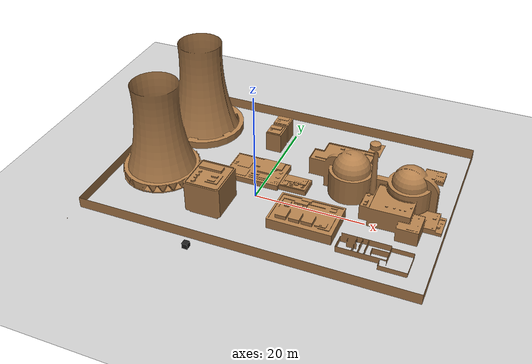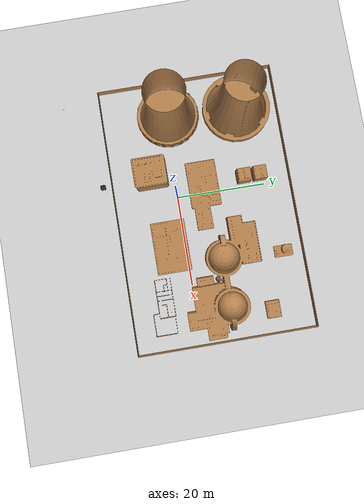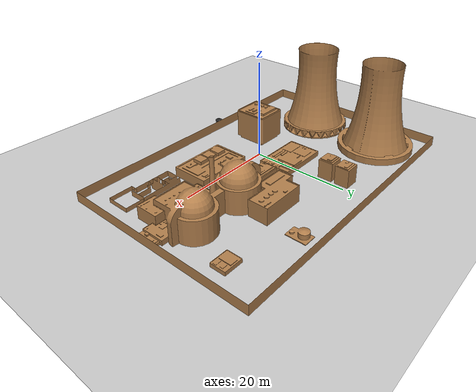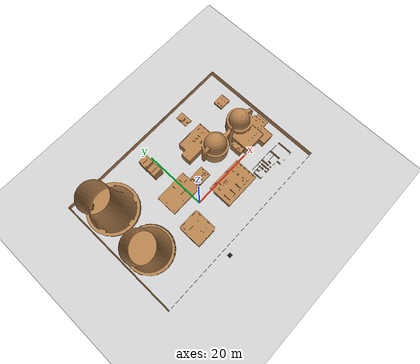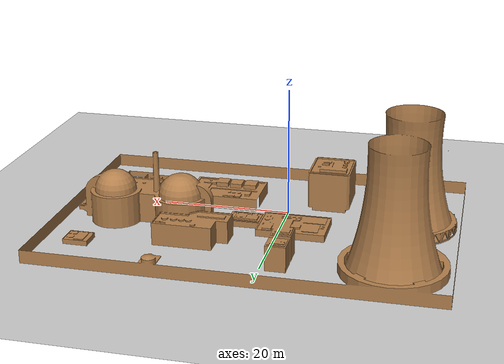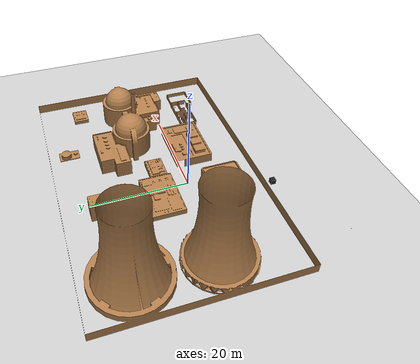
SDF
<sdf version="1.6">
 <world name="default">
  <light name="sun" type="directional">
   <pose>0 0 10 0 -0 0</pose>
   <diffuse>0.8 0.8 0.8 1</diffuse>
   <specular>0.2 0.2 0.2 1</specular>
   <attenuation>
    <range>1000</range>
    <constant>0.9</constant>
    <linear>0.01</linear>
    <quadratic>0.001</quadratic>
   </attenuation>
   <direction>-0.5 0.1 -0.9</direction>
  </light>
  <plugin name="ros_interface_plugin" filename="librotors_gazebo_ros_interface_plugin.so"/>
  <model name="ground_plane">
   <static>1</static>
   <link name="link">
    <collision name="collision">
     <geometry><plane><normal>0 0 1</normal><size>100 100</size></plane></geometry>
     <surface><friction><ode><mu>100</mu><mu2>50</mu2></ode></friction></surface>
    </collision>
    <visual name="visual">
     <cast_shadows>0</cast_shadows>
     <geometry><plane><normal>0 0 1</normal><size>100 100</size></plane></geometry>
     <material>
      <script><uri>file://media/materials/scripts/gazebo.material</uri><name>Gazebo/Grey</name></script>
     </material>
    </visual>
   </link>
  </model>
  <gravity>0 0 -9.8</gravity>
  <magnetic_field>6e-06 2.3e-05 -4.2e-05</magnetic_field>
  <atmosphere type="adiabatic"/>
  <physics name="default_physics" default="0" type="ode">
   <max_step_size>0.001</max_step_size>
   <real_time_factor>1</real_time_factor>
   <real_time_update_rate>1000</real_time_update_rate>
  </physics>
  <scene><ambient>0.4 0.4 0.4 1</ambient><background>0.7 0.7 0.7 1</background><shadows>1</shadows></scene>
  <spherical_coordinates>
   <surface_model>EARTH_WGS84</surface_model>
   <latitude_deg>0</latitude_deg>
   <longitude_deg>0</longitude_deg>
   <elevation>0</elevation>
   <heading_deg>0</heading_deg>
  </spherical_coordinates>
  <model name="env2stl">
   <link name="link_1">
    <inertial>
     <mass>1</mass>
     <inertia>
      <ixx>0.166667</ixx>
      <ixy>0</ixy>
      <ixz>0</ixz>
      <iyy>0.166667</iyy>
      <iyz>0</iyz>
      <izz>0.166667</izz>
     </inertia>
    </inertial>
    <visual name="visual">
     <geometry>
      <mesh><uri>/home/shan/catkin_wq/src/Interface/test_environment/world/env2.stl</uri><scale>1 1 1</scale></mesh>
     </geometry>
     <material>
      <script><uri>file://media/materials/scripts/gazebo.material</uri><name>Gazebo/WoodFloor</name></script>
     </material>
    </visual>
    <collision name="collision">
     <geometry>
      <mesh><uri>/home/shan/catkin_wq/src/Interface/test_environment/world/env2.stl</uri><scale>1 1 1</scale></mesh>
     </geometry>
     <surface>
      <friction>
       <ode><mu>1</mu><mu2>1</mu2><fdir1>0 0 0</fdir1><slip1>0</slip1><slip2>0</slip2></ode>
       <torsional>
        <coefficient>1</coefficient>
        <patch_radius>0</patch_radius>
        <surface_radius>0</surface_radius>
        <use_patch_radius>1</use_patch_radius>
        <ode><slip>0</slip></ode>
       </torsional>
      </friction>
      <bounce><restitution_coefficient>0</restitution_coefficient><threshold>1e+06</threshold></bounce>
      <contact>
       <collide_without_contact>0</collide_without_contact>
       <collide_without_contact_bitmask>1</collide_without_contact_bitmask>
       <collide_bitmask>1</collide_bitmask>
       <ode>
        <soft_cfm>0</soft_cfm>
        <soft_erp>0.2</soft_erp>
        <kp>1e+13</kp>
        <kd>1</kd>
        <max_vel>0.01</max_vel>
        <min_depth>0</min_depth>
       </ode>
       <bullet>
        <split_impulse>1</split_impulse>
        <split_impulse_penetration_threshold>-0.01</split_impulse_penetration_threshold>
        <soft_cfm>0</soft_cfm>
        <soft_erp>0.2</soft_erp>
        <kp>1e+13</kp>
        <kd>1</kd>
       </bullet>
      </contact>
     </surface>
    </collision>
   </link>
   <static>1</static>
   <pose>-0.000976 -0.000244 0 0 -0 0</pose>
  </model>
  <model name="unit_box">
   <link name="link">
    <inertial>
     <mass>1</mass>
     <inertia>
      <ixx>0.166667</ixx>
      <ixy>0</ixy>
      <ixz>0</ixz>
      <iyy>0.166667</iyy>
      <iyz>0</iyz>
      <izz>0.166667</izz>
     </inertia>
    </inertial>
    <visual name="visual">
     <geometry><box><size>1 1 1</size></box></geometry>
     <material>
      <script><name>Gazebo/Black</name><uri>file://media/materials/scripts/gazebo.material</uri></script>
      <shader type="pixel"/>
     </material>
    </visual>
    <collision name="collision">
     <geometry><box><size>1 1 1</size></box></geometry>
     <surface>
      <friction>
       <ode><mu>0.35</mu><mu2>0.35</mu2><fdir1>0 0 0</fdir1><slip1>0.1</slip1><slip2>0.1</slip2></ode>
       <torsional>
        <coefficient>1</coefficient>
        <patch_radius>0</patch_radius>
        <surface_radius>0</surface_radius>
        <use_patch_radius>1</use_patch_radius>
        <ode><slip>0</slip></ode>
       </torsional>
      </friction>
      <bounce><restitution_coefficient>0</restitution_coefficient><threshold>1e+06</threshold></bounce>
      <contact>
       <collide_without_contact>0</collide_without_contact>
       <collide_without_contact_bitmask>1</collide_without_contact_bitmask>
       <collide_bitmask>1</collide_bitmask>
       <ode>
        <soft_cfm>0</soft_cfm>
        <soft_erp>0.2</soft_erp>
        <kp>1e+13</kp>
        <kd>1</kd>
        <max_vel>0.01</max_vel>
        <min_depth>0</min_depth>
       </ode>
       <bullet>
        <split_impulse>1</split_impulse>
        <split_impulse_penetration_threshold>-0.01</split_impulse_penetration_threshold>
        <soft_cfm>0</soft_cfm>
        <soft_erp>0.2</soft_erp>
        <kp>1e+13</kp>
        <kd>1</kd>
       </bullet>
      </contact>
     </surface>
    </collision>
   </link>
   <static>0</static>
   <pose>-5.05931 -16.3502 0.5 0 -0 0</pose>
  </model>
 </world>
</sdf>
